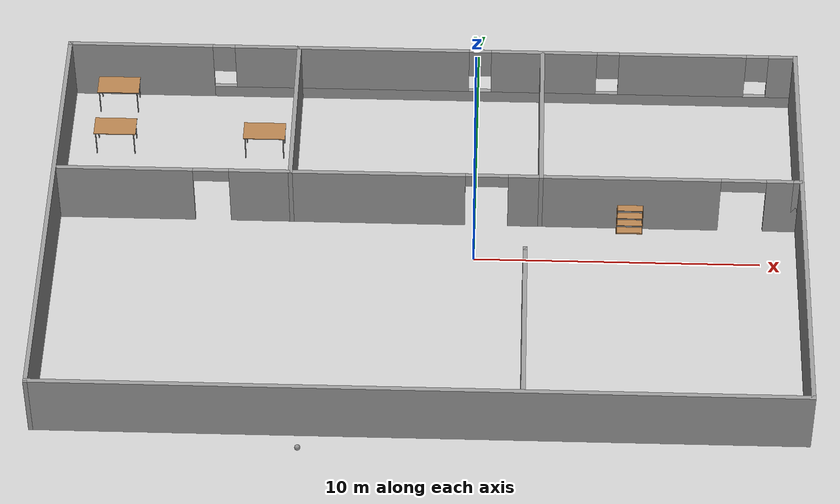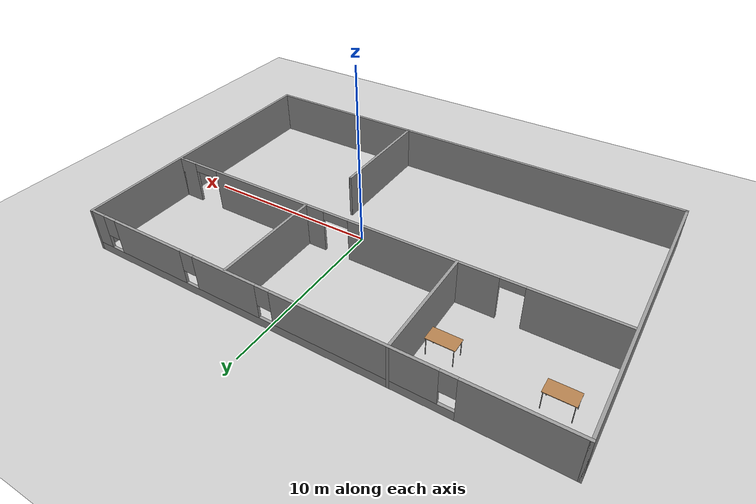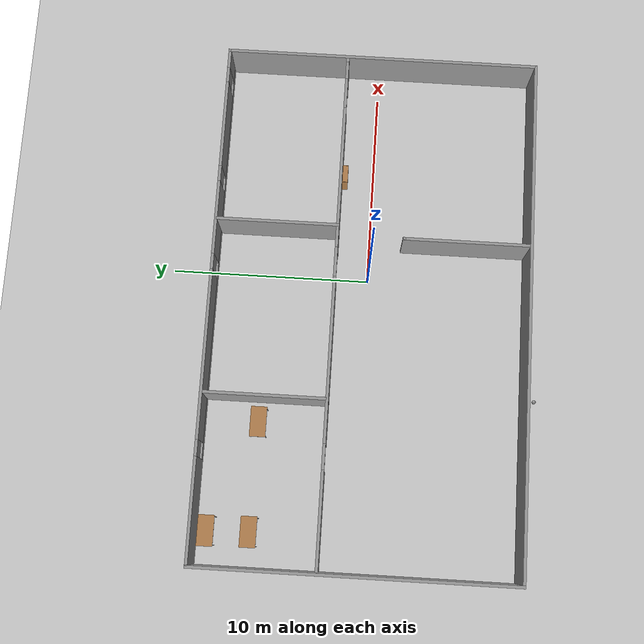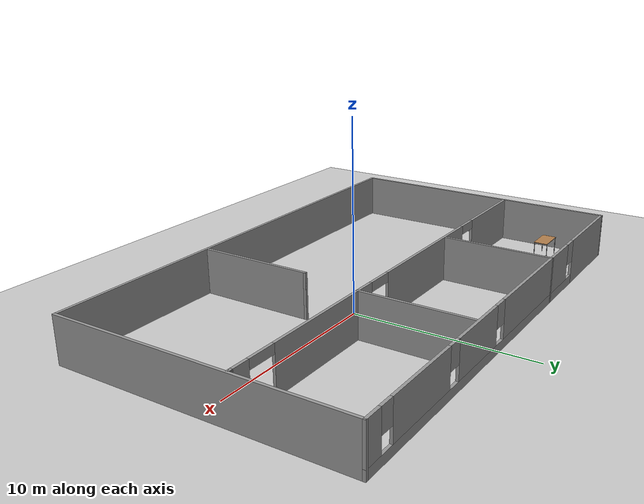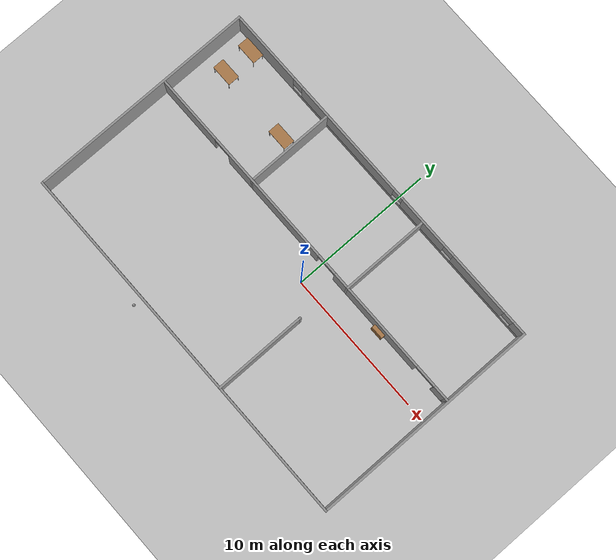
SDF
<sdf version="1.6">
 <world name="default">
  <plugin name="welcome" filename="libwelcome.so"/>
  <light name="sun" type="directional">
   <pose>0 0 10 0 -0 0</pose>
   <diffuse>0.8 0.8 0.8 1</diffuse>
   <specular>0.2 0.2 0.2 1</specular>
   <attenuation>
    <range>1000</range>
    <constant>0.9</constant>
    <linear>0.01</linear>
    <quadratic>0.001</quadratic>
   </attenuation>
   <direction>-0.5 0.1 -0.9</direction>
  </light>
  <model name="ground_plane">
   <static>1</static>
   <link name="link">
    <collision name="collision">
     <geometry><plane><normal>0 0 1</normal><size>100 100</size></plane></geometry>
     <surface><friction><ode><mu>100</mu><mu2>50</mu2></ode></friction></surface>
    </collision>
    <visual name="visual">
     <cast_shadows>0</cast_shadows>
     <geometry><plane><normal>0 0 1</normal><size>100 100</size></plane></geometry>
     <material>
      <script><uri>file://media/materials/scripts/gazebo.material</uri><name>Gazebo/Grey</name></script>
     </material>
    </visual>
   </link>
  </model>
  <gravity>0 0 -9.8</gravity>
  <magnetic_field>6e-06 2.3e-05 -4.2e-05</magnetic_field>
  <atmosphere type="adiabatic"/>
  <physics name="default_physics" default="0" type="ode">
   <max_step_size>0.001</max_step_size>
   <real_time_factor>1</real_time_factor>
   <real_time_update_rate>1000</real_time_update_rate>
  </physics>
  <scene><ambient>0.4 0.4 0.4 1</ambient><background>0.7 0.7 0.7 1</background><shadows>1</shadows></scene>
  <spherical_coordinates>
   <surface_model>EARTH_WGS84</surface_model>
   <latitude_deg>0</latitude_deg>
   <longitude_deg>0</longitude_deg>
   <elevation>0</elevation>
   <heading_deg>0</heading_deg>
  </spherical_coordinates>
  <model name="office">
   <pose>-1.69142 -0.10454 0 0 -0 0</pose>
   <link name="Wall_0">
    <pose>-7.4e-05 7.92399 0 0 -0 0</pose>
    <visual name="Wall_0_Visual_0">
     <pose>-10.5134 0 1.25 0 -0 0</pose>
     <geometry><box><size>5.22353 0.15 2.5</size></box></geometry>
     <material>
      <script><uri>file://media/materials/scripts/gazebo.material</uri><name>Gazebo/Grey</name></script>
      <ambient>1 1 1 1</ambient>
     </material>
     <meta><layer>0</layer></meta>
    </visual>
    <collision name="Wall_0_Collision_0">
     <geometry><box><size>5.22353 0.15 2.5</size></box></geometry>
     <pose>-10.5134 0 1.25 0 -0 0</pose>
    </collision>
    <visual name="Wall_0_Visual_1">
     <pose>2.61177 0 0.25 0 -0 0</pose>
     <geometry><box><size>21.0268 0.15 0.5</size></box></geometry>
     <material>
      <script><uri>file://media/materials/scripts/gazebo.material</uri><name>Gazebo/Grey</name></script>
      <ambient>1 1 1 1</ambient>
     </material>
     <meta><layer>0</layer></meta>
    </visual>
    <collision name="Wall_0_Collision_1">
     <geometry><box><size>21.0268 0.15 0.5</size></box></geometry>
     <pose>2.61177 0 0.25 0 -0 0</pose>
    </collision>
    <visual name="Wall_0_Visual_2">
     <pose>-2.88161 0 1.5 0 -0 0</pose>
     <geometry><box><size>8.44 0.15 2</size></box></geometry>
     <material>
      <script><uri>file://media/materials/scripts/gazebo.material</uri><name>Gazebo/Grey</name></script>
      <ambient>1 1 1 1</ambient>
     </material>
     <meta><layer>0</layer></meta>
    </visual>
    <collision name="Wall_0_Collision_2">
     <geometry><box><size>8.44 0.15 2</size></box></geometry>
     <pose>-2.88161 0 1.5 0 -0 0</pose>
    </collision>
    <visual name="Wall_0_Visual_3">
     <pose>4.03839 0 1.5 0 -0 0</pose>
     <geometry><box><size>3.8 0.15 2</size></box></geometry>
     <material>
      <script><uri>file://media/materials/scripts/gazebo.material</uri><name>Gazebo/Grey</name></script>
      <ambient>1 1 1 1</ambient>
     </material>
     <meta><layer>0</layer></meta>
    </visual>
    <collision name="Wall_0_Collision_3">
     <geometry><box><size>3.8 0.15 2</size></box></geometry>
     <pose>4.03839 0 1.5 0 -0 0</pose>
    </collision>
    <visual name="Wall_0_Visual_4">
     <pose>9.01839 0 1.5 0 -0 0</pose>
     <geometry><box><size>4.56 0.15 2</size></box></geometry>
     <material>
      <script><uri>file://media/materials/scripts/gazebo.material</uri><name>Gazebo/Grey</name></script>
      <ambient>1 1 1 1</ambient>
     </material>
     <meta><layer>0</layer></meta>
    </visual>
    <collision name="Wall_0_Collision_4">
     <geometry><box><size>4.56 0.15 2</size></box></geometry>
     <pose>9.01839 0 1.5 0 -0 0</pose>
    </collision>
    <visual name="Wall_0_Visual_5">
     <pose>12.6118 0 1.5 0 -0 0</pose>
     <geometry><box><size>1.02676 0.15 2</size></box></geometry>
     <material>
      <script><uri>file://media/materials/scripts/gazebo.material</uri><name>Gazebo/Grey</name></script>
      <ambient>1 1 1 1</ambient>
     </material>
     <meta><layer>0</layer></meta>
    </visual>
    <collision name="Wall_0_Collision_5">
     <geometry><box><size>1.02676 0.15 2</size></box></geometry>
     <pose>12.6118 0 1.5 0 -0 0</pose>
    </collision>
    <visual name="Wall_0_Visual_6">
     <pose>-7.50161 0 1.9 0 -0 0</pose>
     <geometry><box><size>0.8 0.15 1.2</size></box></geometry>
     <material>
      <script><uri>file://media/materials/scripts/gazebo.material</uri><name>Gazebo/Grey</name></script>
      <ambient>1 1 1 1</ambient>
     </material>
     <meta><layer>0</layer></meta>
    </visual>
    <collision name="Wall_0_Collision_6">
     <geometry><box><size>0.8 0.15 1.2</size></box></geometry>
     <pose>-7.50161 0 1.9 0 -0 0</pose>
    </collision>
    <visual name="Wall_0_Visual_7">
     <pose>1.73839 0 1.9 0 -0 0</pose>
     <geometry><box><size>0.8 0.15 1.2</size></box></geometry>
     <material>
      <script><uri>file://media/materials/scripts/gazebo.material</uri><name>Gazebo/Grey</name></script>
      <ambient>1 1 1 1</ambient>
     </material>
     <meta><layer>0</layer></meta>
    </visual>
    <collision name="Wall_0_Collision_7">
     <geometry><box><size>0.8 0.15 1.2</size></box></geometry>
     <pose>1.73839 0 1.9 0 -0 0</pose>
    </collision>
    <visual name="Wall_0_Visual_8">
     <pose>6.33839 0 1.9 0 -0 0</pose>
     <geometry><box><size>0.8 0.15 1.2</size></box></geometry>
     <material>
      <script><uri>file://media/materials/scripts/gazebo.material</uri><name>Gazebo/Grey</name></script>
      <ambient>1 1 1 1</ambient>
     </material>
     <meta><layer>0</layer></meta>
    </visual>
    <collision name="Wall_0_Collision_8">
     <geometry><box><size>0.8 0.15 1.2</size></box></geometry>
     <pose>6.33839 0 1.9 0 -0 0</pose>
    </collision>
    <visual name="Wall_0_Visual_9">
     <pose>11.6984 0 1.9 0 -0 0</pose>
     <geometry><box><size>0.8 0.15 1.2</size></box></geometry>
     <material>
      <script><uri>file://media/materials/scripts/gazebo.material</uri><name>Gazebo/Grey</name></script>
      <ambient>1 1 1 1</ambient>
     </material>
     <meta><layer>0</layer></meta>
    </visual>
    <collision name="Wall_0_Collision_9">
     <geometry><box><size>0.8 0.15 1.2</size></box></geometry>
     <pose>11.6984 0 1.9 0 -0 0</pose>
    </collision>
   </link>
   <link name="Wall_1">
    <collision name="Wall_1_Collision">
     <geometry><box><size>16 0.15 2.5</size></box></geometry>
     <pose>0 0 1.25 0 -0 0</pose>
    </collision>
    <visual name="Wall_1_Visual">
     <pose>0 0 1.25 0 -0 0</pose>
     <geometry><box><size>16 0.15 2.5</size></box></geometry>
     <material>
      <script><uri>file://media/materials/scripts/gazebo.material</uri><name>Gazebo/Grey</name></script>
      <ambient>1 1 1 1</ambient>
     </material>
     <meta><layer>0</layer></meta>
    </visual>
    <pose>13.0501 -0.000993 0 0 0 -1.57078</pose>
   </link>
   <link name="Wall_12">
    <collision name="Wall_12_Collision">
     <geometry><box><size>6.194 0.15 2.5</size></box></geometry>
     <pose>0 0 1.25 0 -0 0</pose>
    </collision>
    <visual name="Wall_12_Visual">
     <pose>0 0 1.25 0 -0 0</pose>
     <geometry><box><size>6.194 0.15 2.5</size></box></geometry>
     <material>
      <script><uri>file://media/materials/scripts/gazebo.material</uri><name>Gazebo/Grey</name></script>
      <ambient>1 1 1 1</ambient>
     </material>
     <meta><layer>0</layer></meta>
    </visual>
    <pose>3.97793 4.82399 0 0 0 -1.5708</pose>
   </link>
   <link name="Wall_14">
    <collision name="Wall_14_Collision">
     <geometry><box><size>6.5 0.15 2.5</size></box></geometry>
     <pose>0 0 1.25 0 -0 0</pose>
    </collision>
    <visual name="Wall_14_Visual">
     <pose>0 0 1.25 0 -0 0</pose>
     <geometry><box><size>6.5 0.15 2.5</size></box></geometry>
     <material>
      <script><uri>file://media/materials/scripts/gazebo.material</uri><name>Gazebo/Grey</name></script>
      <ambient>1 1 1 1</ambient>
     </material>
     <meta><layer>0</layer></meta>
    </visual>
    <pose>3.45831 -4.73938 0 0 -0 1.5708</pose>
   </link>
   <link name="Wall_15">
    <collision name="Wall_15_Collision">
     <geometry><box><size>0.15 0.15 2.5</size></box></geometry>
     <pose>0 0 1.25 0 -0 0</pose>
    </collision>
    <visual name="Wall_15_Visual">
     <pose>0 0 1.25 0 -0 0</pose>
     <geometry><box><size>0.15 0.15 2.5</size></box></geometry>
     <material>
      <script><uri>file://media/materials/scripts/gazebo.material</uri><name>Gazebo/Grey</name></script>
      <ambient>1 1 1 1</ambient>
     </material>
     <meta><layer>0</layer></meta>
    </visual>
    <pose>3.45831 -1.56438 0 0 -0 0</pose>
   </link>
   <link name="Wall_2">
    <collision name="Wall_2_Collision">
     <geometry><box><size>26.25 0.15 2.5</size></box></geometry>
     <pose>0 0 1.25 0 -0 0</pose>
    </collision>
    <visual name="Wall_2_Visual">
     <pose>0 0 1.25 0 -0 0</pose>
     <geometry><box><size>26.25 0.15 2.5</size></box></geometry>
     <material>
      <script><uri>file://media/materials/scripts/gazebo.material</uri><name>Gazebo/Grey</name></script>
      <ambient>1 1 1 1</ambient>
     </material>
     <meta><layer>0</layer></meta>
    </visual>
    <pose>0.000219 -7.92598 0 0 -0 3.14159</pose>
   </link>
   <link name="Wall_3">
    <collision name="Wall_3_Collision">
     <geometry><box><size>16 0.15 2.5</size></box></geometry>
     <pose>0 0 1.25 0 -0 0</pose>
    </collision>
    <visual name="Wall_3_Visual">
     <pose>0 0 1.25 0 -0 0</pose>
     <geometry><box><size>16 0.15 2.5</size></box></geometry>
     <material>
      <script><uri>file://media/materials/scripts/gazebo.material</uri><name>Gazebo/Grey</name></script>
      <ambient>1 1 1 1</ambient>
     </material>
     <meta><layer>0</layer></meta>
    </visual>
    <pose>-13.0498 -0.00098 0 0 -0 1.5708</pose>
   </link>
   <link name="Wall_4">
    <collision name="Wall_4_Collision">
     <geometry><box><size>0.16 0.15 2.5</size></box></geometry>
     <pose>0 0 1.25 0 -0 0</pose>
    </collision>
    <visual name="Wall_4_Visual">
     <pose>0 0 1.25 0 -0 0</pose>
     <geometry><box><size>0.16 0.15 2.5</size></box></geometry>
     <material>
      <script><uri>file://media/materials/scripts/gazebo.material</uri><name>Gazebo/Grey</name></script>
      <ambient>1 1 1 1</ambient>
     </material>
     <meta><layer>0</layer></meta>
    </visual>
    <pose>-13.0448 7.92402 0 0 -0 0</pose>
   </link>
   <link name="Wall_6">
    <pose>0.026959 1.80228 0 0 -0 0</pose>
    <visual name="Wall_6_Visual_0">
     <pose>-10.611 0 1.25 0 -0 0</pose>
     <geometry><box><size>4.77804 0.15 2.5</size></box></geometry>
     <material>
      <script><uri>file://media/materials/scripts/gazebo.material</uri><name>Gazebo/Grey</name></script>
      <ambient>1 1 1 1</ambient>
     </material>
     <meta><layer>0</layer></meta>
    </visual>
    <collision name="Wall_6_Collision_0">
     <geometry><box><size>4.77804 0.15 2.5</size></box></geometry>
     <pose>-10.611 0 1.25 0 -0 0</pose>
    </collision>
    <visual name="Wall_6_Visual_1">
     <pose>-2.82775 0 1.25 0 -0 0</pose>
     <geometry><box><size>8.26843 0.15 2.5</size></box></geometry>
     <material>
      <script><uri>file://media/materials/scripts/gazebo.material</uri><name>Gazebo/Grey</name></script>
      <ambient>1 1 1 1</ambient>
     </material>
     <meta><layer>0</layer></meta>
    </visual>
    <collision name="Wall_6_Collision_1">
     <geometry><box><size>8.26843 0.15 2.5</size></box></geometry>
     <pose>-2.82775 0 1.25 0 -0 0</pose>
    </collision>
    <visual name="Wall_6_Visual_2">
     <pose>6.51145 0 1.25 0 -0 0</pose>
     <geometry><box><size>7.40996 0.15 2.5</size></box></geometry>
     <material>
      <script><uri>file://media/materials/scripts/gazebo.material</uri><name>Gazebo/Grey</name></script>
      <ambient>1 1 1 1</ambient>
     </material>
     <meta><layer>0</layer></meta>
    </visual>
    <collision name="Wall_6_Collision_2">
     <geometry><box><size>7.40996 0.15 2.5</size></box></geometry>
     <pose>6.51145 0 1.25 0 -0 0</pose>
    </collision>
    <visual name="Wall_6_Visual_3">
     <pose>12.3982 0 1.25 0 -0 0</pose>
     <geometry><box><size>1.20357 0.15 2.5</size></box></geometry>
     <material>
      <script><uri>file://media/materials/scripts/gazebo.material</uri><name>Gazebo/Grey</name></script>
      <ambient>1 1 1 1</ambient>
     </material>
     <meta><layer>0</layer></meta>
    </visual>
    <collision name="Wall_6_Collision_3">
     <geometry><box><size>1.20357 0.15 2.5</size></box></geometry>
     <pose>12.3982 0 1.25 0 -0 0</pose>
    </collision>
    <visual name="Wall_6_Visual_4">
     <pose>-7.59196 0 2.25 0 -0 0</pose>
     <geometry><box><size>1.26 0.15 0.5</size></box></geometry>
     <material>
      <script><uri>file://media/materials/scripts/gazebo.material</uri><name>Gazebo/Grey</name></script>
      <ambient>1 1 1 1</ambient>
     </material>
     <meta><layer>0</layer></meta>
    </visual>
    <collision name="Wall_6_Collision_4">
     <geometry><box><size>1.26 0.15 0.5</size></box></geometry>
     <pose>-7.59196 0 2.25 0 -0 0</pose>
    </collision>
    <visual name="Wall_6_Visual_5">
     <pose>2.05647 0 2.25 0 -0 0</pose>
     <geometry><box><size>1.5 0.15 0.5</size></box></geometry>
     <material>
      <script><uri>file://media/materials/scripts/gazebo.material</uri><name>Gazebo/Grey</name></script>
      <ambient>1 1 1 1</ambient>
     </material>
     <meta><layer>0</layer></meta>
    </visual>
    <collision name="Wall_6_Collision_5">
     <geometry><box><size>1.5 0.15 0.5</size></box></geometry>
     <pose>2.05647 0 2.25 0 -0 0</pose>
    </collision>
    <visual name="Wall_6_Visual_6">
     <pose>11.0064 0 2.25 0 -0 0</pose>
     <geometry><box><size>1.58 0.15 0.5</size></box></geometry>
     <material>
      <script><uri>file://media/materials/scripts/gazebo.material</uri><name>Gazebo/Grey</name></script>
      <ambient>1 1 1 1</ambient>
     </material>
     <meta><layer>0</layer></meta>
    </visual>
    <collision name="Wall_6_Collision_6">
     <geometry><box><size>1.58 0.15 0.5</size></box></geometry>
     <pose>11.0064 0 2.25 0 -0 0</pose>
    </collision>
   </link>
   <link name="Wall_7">
    <collision name="Wall_7_Collision">
     <geometry><box><size>0.31 0.15 2.5</size></box></geometry>
     <pose>0 0 1.25 0 -0 0</pose>
    </collision>
    <visual name="Wall_7_Visual">
     <pose>0 0 1.25 0 -0 0</pose>
     <geometry><box><size>0.31 0.15 2.5</size></box></geometry>
     <material>
      <script><uri>file://media/materials/scripts/gazebo.material</uri><name>Gazebo/Grey</name></script>
      <ambient>1 1 1 1</ambient>
     </material>
     <meta><layer>0</layer></meta>
    </visual>
    <pose>12.912 1.80228 0 0 0 -3.14159</pose>
   </link>
   <link name="Wall_9">
    <collision name="Wall_9_Collision">
     <geometry><box><size>6.274 0.15 2.5</size></box></geometry>
     <pose>0 0 1.25 0 -0 0</pose>
    </collision>
    <visual name="Wall_9_Visual">
     <pose>0 0 1.25 0 -0 0</pose>
     <geometry><box><size>6.274 0.15 2.5</size></box></geometry>
     <material>
      <script><uri>file://media/materials/scripts/gazebo.material</uri><name>Gazebo/Grey</name></script>
      <ambient>1 1 1 1</ambient>
     </material>
     <meta><layer>0</layer></meta>
    </visual>
    <pose>-4.78207 4.86399 0 0 0 -1.5708</pose>
   </link>
   <static>1</static>
  </model>
  <model name="table">
   <static>1</static>
   <link name="link">
    <collision name="surface">
     <pose>0 0 1 0 -0 0</pose>
     <geometry><box><size>1.5 0.8 0.03</size></box></geometry>
     <surface><friction><ode><mu>0.6</mu><mu2>0.6</mu2></ode></friction></surface>
    </collision>
    <visual name="visual1">
     <pose>0 0 1 0 -0 0</pose>
     <geometry><box><size>1.5 0.8 0.03</size></box></geometry>
     <material>
      <script><uri>file://media/materials/scripts/gazebo.material</uri><name>Gazebo/Wood</name></script>
     </material>
    </visual>
    <collision name="front_left_leg">
     <pose>0.68 0.38 0.5 0 -0 0</pose>
     <geometry><cylinder><radius>0.02</radius><length>1</length></cylinder></geometry>
    </collision>
    <visual name="front_left_leg">
     <pose>0.68 0.38 0.5 0 -0 0</pose>
     <geometry><cylinder><radius>0.02</radius><length>1</length></cylinder></geometry>
     <material>
      <script><uri>file://media/materials/scripts/gazebo.material</uri><name>Gazebo/Grey</name></script>
     </material>
    </visual>
    <collision name="front_right_leg">
     <pose>0.68 -0.38 0.5 0 -0 0</pose>
     <geometry><cylinder><radius>0.02</radius><length>1</length></cylinder></geometry>
    </collision>
    <visual name="front_right_leg">
     <pose>0.68 -0.38 0.5 0 -0 0</pose>
     <geometry><cylinder><radius>0.02</radius><length>1</length></cylinder></geometry>
     <material>
      <script><uri>file://media/materials/scripts/gazebo.material</uri><name>Gazebo/Grey</name></script>
     </material>
    </visual>
    <collision name="back_right_leg">
     <pose>-0.68 -0.38 0.5 0 -0 0</pose>
     <geometry><cylinder><radius>0.02</radius><length>1</length></cylinder></geometry>
    </collision>
    <visual name="back_right_leg">
     <pose>-0.68 -0.38 0.5 0 -0 0</pose>
     <geometry><cylinder><radius>0.02</radius><length>1</length></cylinder></geometry>
     <material>
      <script><uri>file://media/materials/scripts/gazebo.material</uri><name>Gazebo/Grey</name></script>
     </material>
    </visual>
    <collision name="back_left_leg">
     <pose>-0.68 0.38 0.5 0 -0 0</pose>
     <geometry><cylinder><radius>0.02</radius><length>1</length></cylinder></geometry>
    </collision>
    <visual name="back_left_leg">
     <pose>-0.68 0.38 0.5 0 -0 0</pose>
     <geometry><cylinder><radius>0.02</radius><length>1</length></cylinder></geometry>
     <material>
      <script><uri>file://media/materials/scripts/gazebo.material</uri><name>Gazebo/Grey</name></script>
     </material>
    </visual>
   </link>
   <pose>-13.0289 7.21869 0 0 -0 0</pose>
  </model>
  <model name="table_0">
   <static>1</static>
   <link name="link">
    <collision name="surface">
     <pose>0 0 1 0 -0 0</pose>
     <geometry><box><size>1.5 0.8 0.03</size></box></geometry>
     <surface><friction><ode><mu>0.6</mu><mu2>0.6</mu2></ode></friction></surface>
    </collision>
    <visual name="visual1">
     <pose>0 0 1 0 -0 0</pose>
     <geometry><box><size>1.5 0.8 0.03</size></box></geometry>
     <material>
      <script><uri>file://media/materials/scripts/gazebo.material</uri><name>Gazebo/Wood</name></script>
     </material>
    </visual>
    <collision name="front_left_leg">
     <pose>0.68 0.38 0.5 0 -0 0</pose>
     <geometry><cylinder><radius>0.02</radius><length>1</length></cylinder></geometry>
    </collision>
    <visual name="front_left_leg">
     <pose>0.68 0.38 0.5 0 -0 0</pose>
     <geometry><cylinder><radius>0.02</radius><length>1</length></cylinder></geometry>
     <material>
      <script><uri>file://media/materials/scripts/gazebo.material</uri><name>Gazebo/Grey</name></script>
     </material>
    </visual>
    <collision name="front_right_leg">
     <pose>0.68 -0.38 0.5 0 -0 0</pose>
     <geometry><cylinder><radius>0.02</radius><length>1</length></cylinder></geometry>
    </collision>
    <visual name="front_right_leg">
     <pose>0.68 -0.38 0.5 0 -0 0</pose>
     <geometry><cylinder><radius>0.02</radius><length>1</length></cylinder></geometry>
     <material>
      <script><uri>file://media/materials/scripts/gazebo.material</uri><name>Gazebo/Grey</name></script>
     </material>
    </visual>
    <collision name="back_right_leg">
     <pose>-0.68 -0.38 0.5 0 -0 0</pose>
     <geometry><cylinder><radius>0.02</radius><length>1</length></cylinder></geometry>
    </collision>
    <visual name="back_right_leg">
     <pose>-0.68 -0.38 0.5 0 -0 0</pose>
     <geometry><cylinder><radius>0.02</radius><length>1</length></cylinder></geometry>
     <material>
      <script><uri>file://media/materials/scripts/gazebo.material</uri><name>Gazebo/Grey</name></script>
     </material>
    </visual>
    <collision name="back_left_leg">
     <pose>-0.68 0.38 0.5 0 -0 0</pose>
     <geometry><cylinder><radius>0.02</radius><length>1</length></cylinder></geometry>
    </collision>
    <visual name="back_left_leg">
     <pose>-0.68 0.38 0.5 0 -0 0</pose>
     <geometry><cylinder><radius>0.02</radius><length>1</length></cylinder></geometry>
     <material>
      <script><uri>file://media/materials/scripts/gazebo.material</uri><name>Gazebo/Grey</name></script>
     </material>
    </visual>
   </link>
   <pose>-7.61526 5.05052 0 0 -0 0</pose>
  </model>
  <model name="table_1">
   <static>1</static>
   <link name="link">
    <collision name="surface">
     <pose>0 0 1 0 -0 0</pose>
     <geometry><box><size>1.5 0.8 0.03</size></box></geometry>
     <surface><friction><ode><mu>0.6</mu><mu2>0.6</mu2></ode></friction></surface>
    </collision>
    <visual name="visual1">
     <pose>0 0 1 0 -0 0</pose>
     <geometry><box><size>1.5 0.8 0.03</size></box></geometry>
     <material>
      <script><uri>file://media/materials/scripts/gazebo.material</uri><name>Gazebo/Wood</name></script>
     </material>
    </visual>
    <collision name="front_left_leg">
     <pose>0.68 0.38 0.5 0 -0 0</pose>
     <geometry><cylinder><radius>0.02</radius><length>1</length></cylinder></geometry>
    </collision>
    <visual name="front_left_leg">
     <pose>0.68 0.38 0.5 0 -0 0</pose>
     <geometry><cylinder><radius>0.02</radius><length>1</length></cylinder></geometry>
     <material>
      <script><uri>file://media/materials/scripts/gazebo.material</uri><name>Gazebo/Grey</name></script>
     </material>
    </visual>
    <collision name="front_right_leg">
     <pose>0.68 -0.38 0.5 0 -0 0</pose>
     <geometry><cylinder><radius>0.02</radius><length>1</length></cylinder></geometry>
    </collision>
    <visual name="front_right_leg">
     <pose>0.68 -0.38 0.5 0 -0 0</pose>
     <geometry><cylinder><radius>0.02</radius><length>1</length></cylinder></geometry>
     <material>
      <script><uri>file://media/materials/scripts/gazebo.material</uri><name>Gazebo/Grey</name></script>
     </material>
    </visual>
    <collision name="back_right_leg">
     <pose>-0.68 -0.38 0.5 0 -0 0</pose>
     <geometry><cylinder><radius>0.02</radius><length>1</length></cylinder></geometry>
    </collision>
    <visual name="back_right_leg">
     <pose>-0.68 -0.38 0.5 0 -0 0</pose>
     <geometry><cylinder><radius>0.02</radius><length>1</length></cylinder></geometry>
     <material>
      <script><uri>file://media/materials/scripts/gazebo.material</uri><name>Gazebo/Grey</name></script>
     </material>
    </visual>
    <collision name="back_left_leg">
     <pose>-0.68 0.38 0.5 0 -0 0</pose>
     <geometry><cylinder><radius>0.02</radius><length>1</length></cylinder></geometry>
    </collision>
    <visual name="back_left_leg">
     <pose>-0.68 0.38 0.5 0 -0 0</pose>
     <geometry><cylinder><radius>0.02</radius><length>1</length></cylinder></geometry>
     <material>
      <script><uri>file://media/materials/scripts/gazebo.material</uri><name>Gazebo/Grey</name></script>
     </material>
    </visual>
   </link>
   <pose>-12.9788 5.14204 0 0 -0 0</pose>
  </model>
  <model name="bookshelf">
   <static>1</static>
   <link name="link">
    <inertial><mass>1</mass></inertial>
    <collision name="back">
     <pose>0 0.005 0.6 0 -0 0</pose>
     <geometry><box><size>0.9 0.01 1.2</size></box></geometry>
    </collision>
    <visual name="visual1">
     <pose>0 0.005 0.6 0 -0 0</pose>
     <geometry><box><size>0.9 0.01 1.2</size></box></geometry>
     <material>
      <script><uri>file://media/materials/scripts/gazebo.material</uri><name>Gazebo/Wood</name></script>
     </material>
    </visual>
    <collision name="left_side">
     <pose>0.45 -0.195 0.6 0 -0 0</pose>
     <geometry><box><size>0.02 0.4 1.2</size></box></geometry>
    </collision>
    <visual name="visual2">
     <pose>0.45 -0.195 0.6 0 -0 0</pose>
     <geometry><box><size>0.02 0.4 1.2</size></box></geometry>
     <material>
      <script><uri>file://media/materials/scripts/gazebo.material</uri><name>Gazebo/Wood</name></script>
     </material>
    </visual>
    <collision name="right_side">
     <pose>-0.45 -0.195 0.6 0 -0 0</pose>
     <geometry><box><size>0.02 0.4 1.2</size></box></geometry>
    </collision>
    <visual name="visual3">
     <pose>-0.45 -0.195 0.6 0 -0 0</pose>
     <geometry><box><size>0.02 0.4 1.2</size></box></geometry>
     <material>
      <script><uri>file://media/materials/scripts/gazebo.material</uri><name>Gazebo/Wood</name></script>
     </material>
    </visual>
    <collision name="bottom">
     <pose>0 -0.195 0.03 0 -0 0</pose>
     <geometry><box><size>0.88 0.4 0.06</size></box></geometry>
    </collision>
    <visual name="visual4">
     <pose>0 -0.195 0.03 0 -0 0</pose>
     <geometry><box><size>0.88 0.4 0.06</size></box></geometry>
     <material>
      <script><uri>file://media/materials/scripts/gazebo.material</uri><name>Gazebo/Wood</name></script>
     </material>
    </visual>
    <collision name="top">
     <pose>0 -0.195 1.19 0 -0 0</pose>
     <geometry><box><size>0.88 0.4 0.02</size></box></geometry>
    </collision>
    <visual name="visual5">
     <pose>0 -0.195 1.19 0 -0 0</pose>
     <geometry><box><size>0.88 0.4 0.02</size></box></geometry>
     <material>
      <script><uri>file://media/materials/scripts/gazebo.material</uri><name>Gazebo/Wood</name></script>
     </material>
    </visual>
    <collision name="low_shelf">
     <pose>0 -0.195 0.43 0 -0 0</pose>
     <geometry><box><size>0.88 0.4 0.02</size></box></geometry>
    </collision>
    <visual name="visual6">
     <pose>0 -0.195 0.43 0 -0 0</pose>
     <geometry><box><size>0.88 0.4 0.02</size></box></geometry>
     <material>
      <script><uri>file://media/materials/scripts/gazebo.material</uri><name>Gazebo/Wood</name></script>
     </material>
    </visual>
    <collision name="high_shelf">
     <pose>0 -0.195 0.8 0 -0 0</pose>
     <geometry><box><size>0.88 0.4 0.02</size></box></geometry>
    </collision>
    <visual name="visual7">
     <pose>0 -0.195 0.8 0 -0 0</pose>
     <geometry><box><size>0.88 0.4 0.02</size></box></geometry>
     <material>
      <script><uri>file://media/materials/scripts/gazebo.material</uri><name>Gazebo/Wood</name></script>
     </material>
    </visual>
   </link>
   <pose>5.44111 1.74665 0 0 -0 0</pose>
  </model>
  <model name="my_ball">
   <link name="link_0">
    <inertial>
     <mass>1</mass>
     <inertia><ixx>0.1</ixx><ixy>0</ixy><ixz>0</ixz><iyy>0.1</iyy><iyz>0</iyz><izz>0.1</izz></inertia>
    </inertial>
    <visual name="visual">
     <geometry><sphere><radius>0.1</radius></sphere></geometry>
     <material>
      <lighting>1</lighting>
      <script><uri>file://media/materials/scripts/gazebo.material</uri><name>Gazebo/Grey</name></script>
      <shader type="pixel"><normal_map>__default__</normal_map></shader>
      <ambient>1 1 1 1</ambient>
      <diffuse>1 1 1 1</diffuse>
      <specular>1 1 1 1</specular>
      <emissive>0 0 0 1</emissive>
     </material>
    </visual>
    <collision name="collision">
     <geometry><sphere><radius>0.1</radius></sphere></geometry>
     <surface>
      <friction>
       <ode><mu>1</mu><mu2>1</mu2><fdir1>0 0 0</fdir1><slip1>0</slip1><slip2>0</slip2></ode>
       <torsional>
        <coefficient>1</coefficient>
        <patch_radius>0</patch_radius>
        <surface_radius>0</surface_radius>
        <use_patch_radius>1</use_patch_radius>
        <ode><slip>0</slip></ode>
       </torsional>
      </friction>
      <bounce><restitution_coefficient>0</restitution_coefficient><threshold>1e+06</threshold></bounce>
      <contact>
       <collide_without_contact>0</collide_without_contact>
       <collide_without_contact_bitmask>1</collide_without_contact_bitmask>
       <collide_bitmask>1</collide_bitmask>
       <ode>
        <soft_cfm>0</soft_cfm>
        <soft_erp>0.2</soft_erp>
        <kp>1e+13</kp>
        <kd>1</kd>
        <max_vel>0.01</max_vel>
        <min_depth>0</min_depth>
       </ode>
       <bullet>
        <split_impulse>1</split_impulse>
        <split_impulse_penetration_threshold>-0.01</split_impulse_penetration_threshold>
        <soft_cfm>0</soft_cfm>
        <soft_erp>0.2</soft_erp>
        <kp>1e+13</kp>
        <kd>1</kd>
       </bullet>
      </contact>
     </surface>
    </collision>
   </link>
   <static>0</static>
   <pose>-5.73331 -8.69499 0.1 0 -0 0</pose>
  </model>
 </world>
</sdf>
